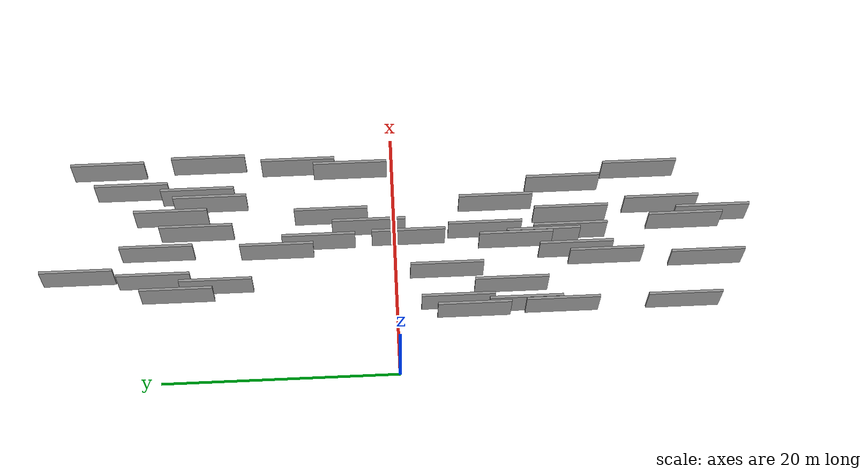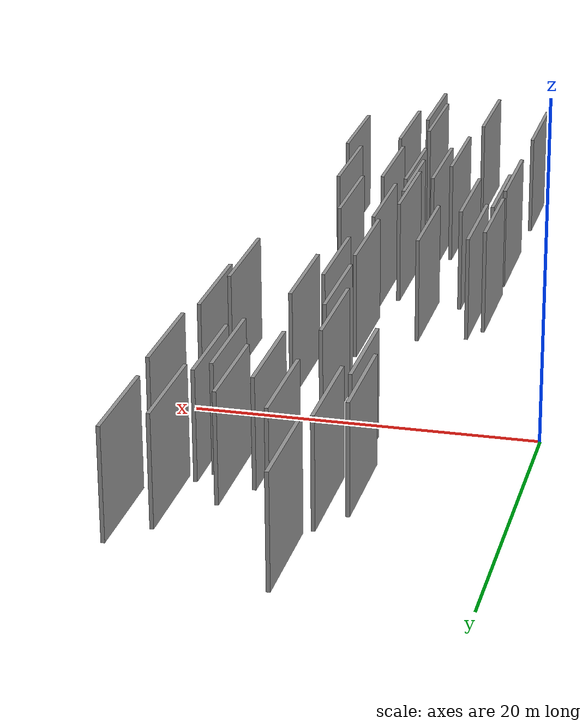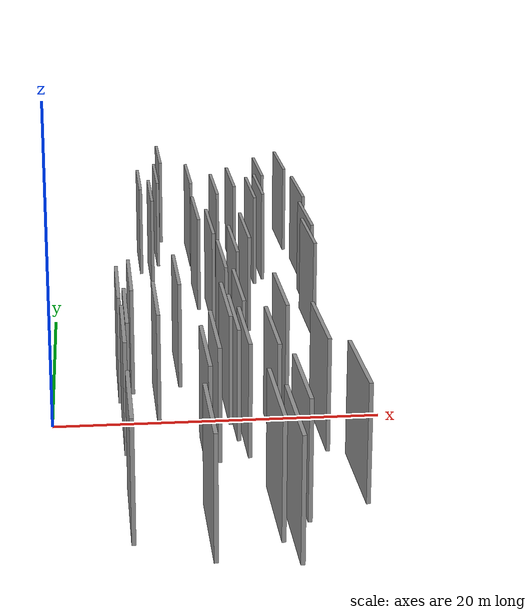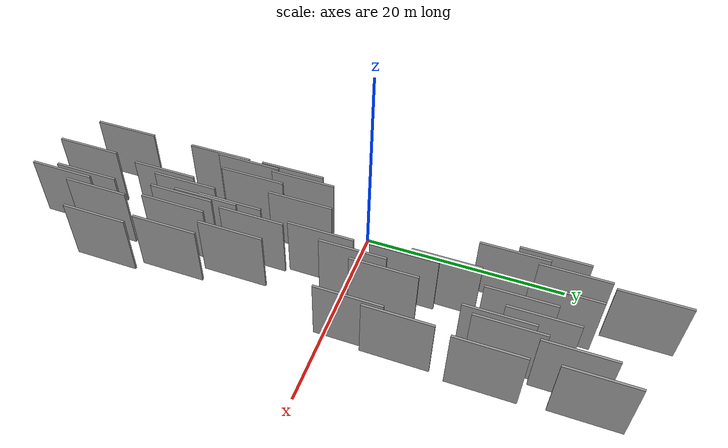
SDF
<sdf version="1.6">
 <world name="default">
  <scene>
   <sky><clouds><speed>12</speed></clouds></sky>
   <ambient>0.4 0.4 0.4 1</ambient>
   <background>0.7 0.7 0.7 1</background>
   <shadows>1</shadows>
  </scene>
  <gravity>0 0 -9.8066</gravity>
  <magnetic_field>6e-06 2.3e-05 -4.2e-05</magnetic_field>
  <physics default="0" name="default_physics" type="ode">
   <ode>
    <solver>
     <type>quick</type>
     <iters>10</iters>
     <sor>1.0</sor>
     <use_dynamic_moi_rescaling>0</use_dynamic_moi_rescaling>
    </solver>
    <constraints>
     <cfm>0</cfm>
     <erp>0.2</erp>
     <contact_max_correcting_vel>100</contact_max_correcting_vel>
     <contact_surface_layer>0.001</contact_surface_layer>
    </constraints>
   </ode>
   <max_step_size>0.004</max_step_size>
   <real_time_factor>1</real_time_factor>
   <real_time_update_rate>250</real_time_update_rate>
  </physics>
  <light name="sun" type="directional">
   <pose>0 0 10 0 0 0</pose>
   <diffuse>0.8 0.8 0.8 1</diffuse>
   <specular>0.2 0.2 0.2 1</specular>
   <attenuation>
    <range>1000</range>
    <constant>0.9</constant>
    <linear>0.01</linear>
    <quadratic>0.001</quadratic>
   </attenuation>
   <direction>-0.5 0.1 -0.9</direction>
  </light>
  <model name="grey_wall_1">
   <static>1</static>
   <pose>15.1076 -20.1467 5.0 0.000000 0.000000 1.570796</pose>
   <link name="link">
    <pose>0 0 3.00 0 0 0</pose>
    <collision name="collision"><geometry><box><size>6.00 0.2 6.00</size></box></geometry></collision>
    <visual name="visual">
     <cast_shadows>0</cast_shadows>
     <geometry><box><size>6.00 0.2 6.00</size></box></geometry>
     <material>
      <script>
       <uri>model://grey_wall/materials/scripts</uri>
       <uri>model://grey_wall/materials/textures</uri>
       <name>vrc/grey_wall</name>
      </script>
     </material>
    </visual>
   </link>
  </model>
  <model name="grey_wall_2">
   <static>1</static>
   <pose>12.1999 5.2077 5.0 0.000000 0.000000 1.570796</pose>
   <link name="link">
    <pose>0 0 3.00 0 0 0</pose>
    <collision name="collision"><geometry><box><size>6.00 0.2 6.00</size></box></geometry></collision>
    <visual name="visual">
     <cast_shadows>0</cast_shadows>
     <geometry><box><size>6.00 0.2 6.00</size></box></geometry>
     <material>
      <script>
       <uri>model://grey_wall/materials/scripts</uri>
       <uri>model://grey_wall/materials/textures</uri>
       <name>vrc/grey_wall</name>
      </script>
     </material>
    </visual>
   </link>
  </model>
  <model name="grey_wall_3">
   <static>1</static>
   <pose>10.1871 -14.3013 5.0 0.000000 0.000000 1.570796</pose>
   <link name="link">
    <pose>0 0 3.00 0 0 0</pose>
    <collision name="collision"><geometry><box><size>6.00 0.2 6.00</size></box></geometry></collision>
    <visual name="visual">
     <cast_shadows>0</cast_shadows>
     <geometry><box><size>6.00 0.2 6.00</size></box></geometry>
     <material>
      <script>
       <uri>model://grey_wall/materials/scripts</uri>
       <uri>model://grey_wall/materials/textures</uri>
       <name>vrc/grey_wall</name>
      </script>
     </material>
    </visual>
   </link>
  </model>
  <model name="grey_wall_4">
   <static>1</static>
   <pose>16.6291 23.3080 5.0 0.000000 0.000000 1.570796</pose>
   <link name="link">
    <pose>0 0 3.00 0 0 0</pose>
    <collision name="collision"><geometry><box><size>6.00 0.2 6.00</size></box></geometry></collision>
    <visual name="visual">
     <cast_shadows>0</cast_shadows>
     <geometry><box><size>6.00 0.2 6.00</size></box></geometry>
     <material>
      <script>
       <uri>model://grey_wall/materials/scripts</uri>
       <uri>model://grey_wall/materials/textures</uri>
       <name>vrc/grey_wall</name>
      </script>
     </material>
    </visual>
   </link>
  </model>
  <model name="grey_wall_5">
   <static>1</static>
   <pose>12.1281 -21.8119 5.0 0.000000 0.000000 1.570796</pose>
   <link name="link">
    <pose>0 0 3.00 0 0 0</pose>
    <collision name="collision"><geometry><box><size>6.00 0.2 6.00</size></box></geometry></collision>
    <visual name="visual">
     <cast_shadows>0</cast_shadows>
     <geometry><box><size>6.00 0.2 6.00</size></box></geometry>
     <material>
      <script>
       <uri>model://grey_wall/materials/scripts</uri>
       <uri>model://grey_wall/materials/textures</uri>
       <name>vrc/grey_wall</name>
      </script>
     </material>
    </visual>
   </link>
  </model>
  <model name="grey_wall_6">
   <static>1</static>
   <pose>10.2048 -1.0611 5.0 0.000000 0.000000 1.570796</pose>
   <link name="link">
    <pose>0 0 3.00 0 0 0</pose>
    <collision name="collision"><geometry><box><size>6.00 0.2 6.00</size></box></geometry></collision>
    <visual name="visual">
     <cast_shadows>0</cast_shadows>
     <geometry><box><size>6.00 0.2 6.00</size></box></geometry>
     <material>
      <script>
       <uri>model://grey_wall/materials/scripts</uri>
       <uri>model://grey_wall/materials/textures</uri>
       <name>vrc/grey_wall</name>
      </script>
     </material>
    </visual>
   </link>
  </model>
  <model name="grey_wall_7">
   <static>1</static>
   <pose>3.9544 -6.2248 5.0 0.000000 0.000000 1.570796</pose>
   <link name="link">
    <pose>0 0 3.00 0 0 0</pose>
    <collision name="collision"><geometry><box><size>6.00 0.2 6.00</size></box></geometry></collision>
    <visual name="visual">
     <cast_shadows>0</cast_shadows>
     <geometry><box><size>6.00 0.2 6.00</size></box></geometry>
     <material>
      <script>
       <uri>model://grey_wall/materials/scripts</uri>
       <uri>model://grey_wall/materials/textures</uri>
       <name>vrc/grey_wall</name>
      </script>
     </material>
    </visual>
   </link>
  </model>
  <model name="grey_wall_8">
   <static>1</static>
   <pose>14.2728 16.0527 5.0 0.000000 0.000000 1.570796</pose>
   <link name="link">
    <pose>0 0 3.00 0 0 0</pose>
    <collision name="collision"><geometry><box><size>6.00 0.2 6.00</size></box></geometry></collision>
    <visual name="visual">
     <cast_shadows>0</cast_shadows>
     <geometry><box><size>6.00 0.2 6.00</size></box></geometry>
     <material>
      <script>
       <uri>model://grey_wall/materials/scripts</uri>
       <uri>model://grey_wall/materials/textures</uri>
       <name>vrc/grey_wall</name>
      </script>
     </material>
    </visual>
   </link>
  </model>
  <model name="grey_wall_9">
   <static>1</static>
   <pose>4.6797 -4.9293 5.0 0.000000 0.000000 1.570796</pose>
   <link name="link">
    <pose>0 0 3.00 0 0 0</pose>
    <collision name="collision"><geometry><box><size>6.00 0.2 6.00</size></box></geometry></collision>
    <visual name="visual">
     <cast_shadows>0</cast_shadows>
     <geometry><box><size>6.00 0.2 6.00</size></box></geometry>
     <material>
      <script>
       <uri>model://grey_wall/materials/scripts</uri>
       <uri>model://grey_wall/materials/textures</uri>
       <name>vrc/grey_wall</name>
      </script>
     </material>
    </visual>
   </link>
  </model>
  <model name="grey_wall_10">
   <static>1</static>
   <pose>14.1729 -13.8477 5.0 0.000000 0.000000 1.570796</pose>
   <link name="link">
    <pose>0 0 3.00 0 0 0</pose>
    <collision name="collision"><geometry><box><size>6.00 0.2 6.00</size></box></geometry></collision>
    <visual name="visual">
     <cast_shadows>0</cast_shadows>
     <geometry><box><size>6.00 0.2 6.00</size></box></geometry>
     <material>
      <script>
       <uri>model://grey_wall/materials/scripts</uri>
       <uri>model://grey_wall/materials/textures</uri>
       <name>vrc/grey_wall</name>
      </script>
     </material>
    </visual>
   </link>
  </model>
  <model name="grey_wall_11">
   <static>1</static>
   <pose>11.2247 -25.9429 5.0 0.000000 0.000000 1.570796</pose>
   <link name="link">
    <pose>0 0 3.00 0 0 0</pose>
    <collision name="collision"><geometry><box><size>6.00 0.2 6.00</size></box></geometry></collision>
    <visual name="visual">
     <cast_shadows>0</cast_shadows>
     <geometry><box><size>6.00 0.2 6.00</size></box></geometry>
     <material>
      <script>
       <uri>model://grey_wall/materials/scripts</uri>
       <uri>model://grey_wall/materials/textures</uri>
       <name>vrc/grey_wall</name>
      </script>
     </material>
    </visual>
   </link>
  </model>
  <model name="grey_wall_12">
   <static>1</static>
   <pose>12.5428 18.3019 5.0 0.000000 0.000000 1.570796</pose>
   <link name="link">
    <pose>0 0 3.00 0 0 0</pose>
    <collision name="collision"><geometry><box><size>6.00 0.2 6.00</size></box></geometry></collision>
    <visual name="visual">
     <cast_shadows>0</cast_shadows>
     <geometry><box><size>6.00 0.2 6.00</size></box></geometry>
     <material>
      <script>
       <uri>model://grey_wall/materials/scripts</uri>
       <uri>model://grey_wall/materials/textures</uri>
       <name>vrc/grey_wall</name>
      </script>
     </material>
    </visual>
   </link>
  </model>
  <model name="grey_wall_13">
   <static>1</static>
   <pose>12.7987 -8.3008 5.0 0.000000 0.000000 1.570796</pose>
   <link name="link">
    <pose>0 0 3.00 0 0 0</pose>
    <collision name="collision"><geometry><box><size>6.00 0.2 6.00</size></box></geometry></collision>
    <visual name="visual">
     <cast_shadows>0</cast_shadows>
     <geometry><box><size>6.00 0.2 6.00</size></box></geometry>
     <material>
      <script>
       <uri>model://grey_wall/materials/scripts</uri>
       <uri>model://grey_wall/materials/textures</uri>
       <name>vrc/grey_wall</name>
      </script>
     </material>
    </visual>
   </link>
  </model>
  <model name="grey_wall_14">
   <static>1</static>
   <pose>9.8481 -12.0889 5.0 0.000000 0.000000 1.570796</pose>
   <link name="link">
    <pose>0 0 3.00 0 0 0</pose>
    <collision name="collision"><geometry><box><size>6.00 0.2 6.00</size></box></geometry></collision>
    <visual name="visual">
     <cast_shadows>0</cast_shadows>
     <geometry><box><size>6.00 0.2 6.00</size></box></geometry>
     <material>
      <script>
       <uri>model://grey_wall/materials/scripts</uri>
       <uri>model://grey_wall/materials/textures</uri>
       <name>vrc/grey_wall</name>
      </script>
     </material>
    </visual>
   </link>
  </model>
  <model name="grey_wall_15">
   <static>1</static>
   <pose>6.7236 14.8359 5.0 0.000000 0.000000 1.570796</pose>
   <link name="link">
    <pose>0 0 3.00 0 0 0</pose>
    <collision name="collision"><geometry><box><size>6.00 0.2 6.00</size></box></geometry></collision>
    <visual name="visual">
     <cast_shadows>0</cast_shadows>
     <geometry><box><size>6.00 0.2 6.00</size></box></geometry>
     <material>
      <script>
       <uri>model://grey_wall/materials/scripts</uri>
       <uri>model://grey_wall/materials/textures</uri>
       <name>vrc/grey_wall</name>
      </script>
     </material>
    </visual>
   </link>
  </model>
  <model name="grey_wall_16">
   <static>1</static>
   <pose>11.1813 2.1592 5.0 0.000000 0.000000 1.570796</pose>
   <link name="link">
    <pose>0 0 3.00 0 0 0</pose>
    <collision name="collision"><geometry><box><size>6.00 0.2 6.00</size></box></geometry></collision>
    <visual name="visual">
     <cast_shadows>0</cast_shadows>
     <geometry><box><size>6.00 0.2 6.00</size></box></geometry>
     <material>
      <script>
       <uri>model://grey_wall/materials/scripts</uri>
       <uri>model://grey_wall/materials/textures</uri>
       <name>vrc/grey_wall</name>
      </script>
     </material>
    </visual>
   </link>
  </model>
  <model name="grey_wall_17">
   <static>1</static>
   <pose>16.8694 15.0728 5.0 0.000000 0.000000 1.570796</pose>
   <link name="link">
    <pose>0 0 3.00 0 0 0</pose>
    <collision name="collision"><geometry><box><size>6.00 0.2 6.00</size></box></geometry></collision>
    <visual name="visual">
     <cast_shadows>0</cast_shadows>
     <geometry><box><size>6.00 0.2 6.00</size></box></geometry>
     <material>
      <script>
       <uri>model://grey_wall/materials/scripts</uri>
       <uri>model://grey_wall/materials/textures</uri>
       <name>vrc/grey_wall</name>
      </script>
     </material>
    </visual>
   </link>
  </model>
  <model name="grey_wall_18">
   <static>1</static>
   <pose>11.2054 16.2878 5.0 0.000000 0.000000 1.570796</pose>
   <link name="link">
    <pose>0 0 3.00 0 0 0</pose>
    <collision name="collision"><geometry><box><size>6.00 0.2 6.00</size></box></geometry></collision>
    <visual name="visual">
     <cast_shadows>0</cast_shadows>
     <geometry><box><size>6.00 0.2 6.00</size></box></geometry>
     <material>
      <script>
       <uri>model://grey_wall/materials/scripts</uri>
       <uri>model://grey_wall/materials/textures</uri>
       <name>vrc/grey_wall</name>
      </script>
     </material>
    </visual>
   </link>
  </model>
  <model name="grey_wall_19">
   <static>1</static>
   <pose>10.6849 -23.7205 5.0 0.000000 0.000000 1.570796</pose>
   <link name="link">
    <pose>0 0 3.00 0 0 0</pose>
    <collision name="collision"><geometry><box><size>6.00 0.2 6.00</size></box></geometry></collision>
    <visual name="visual">
     <cast_shadows>0</cast_shadows>
     <geometry><box><size>6.00 0.2 6.00</size></box></geometry>
     <material>
      <script>
       <uri>model://grey_wall/materials/scripts</uri>
       <uri>model://grey_wall/materials/textures</uri>
       <name>vrc/grey_wall</name>
      </script>
     </material>
    </visual>
   </link>
  </model>
  <model name="grey_wall_20">
   <static>1</static>
   <pose>9.6404 19.5847 5.0 0.000000 0.000000 1.570796</pose>
   <link name="link">
    <pose>0 0 3.00 0 0 0</pose>
    <collision name="collision"><geometry><box><size>6.00 0.2 6.00</size></box></geometry></collision>
    <visual name="visual">
     <cast_shadows>0</cast_shadows>
     <geometry><box><size>6.00 0.2 6.00</size></box></geometry>
     <material>
      <script>
       <uri>model://grey_wall/materials/scripts</uri>
       <uri>model://grey_wall/materials/textures</uri>
       <name>vrc/grey_wall</name>
      </script>
     </material>
    </visual>
   </link>
  </model>
  <model name="grey_wall_21">
   <static>1</static>
   <pose>8.6431 -14.7393 5.0 0.000000 0.000000 1.570796</pose>
   <link name="link">
    <pose>0 0 3.00 0 0 0</pose>
    <collision name="collision"><geometry><box><size>6.00 0.2 6.00</size></box></geometry></collision>
    <visual name="visual">
     <cast_shadows>0</cast_shadows>
     <geometry><box><size>6.00 0.2 6.00</size></box></geometry>
     <material>
      <script>
       <uri>model://grey_wall/materials/scripts</uri>
       <uri>model://grey_wall/materials/textures</uri>
       <name>vrc/grey_wall</name>
      </script>
     </material>
    </visual>
   </link>
  </model>
  <model name="grey_wall_22">
   <static>1</static>
   <pose>10.5808 -7.3412 5.0 0.000000 0.000000 1.570796</pose>
   <link name="link">
    <pose>0 0 3.00 0 0 0</pose>
    <collision name="collision"><geometry><box><size>6.00 0.2 6.00</size></box></geometry></collision>
    <visual name="visual">
     <cast_shadows>0</cast_shadows>
     <geometry><box><size>6.00 0.2 6.00</size></box></geometry>
     <material>
      <script>
       <uri>model://grey_wall/materials/scripts</uri>
       <uri>model://grey_wall/materials/textures</uri>
       <name>vrc/grey_wall</name>
      </script>
     </material>
    </visual>
   </link>
  </model>
  <model name="grey_wall_23">
   <static>1</static>
   <pose>13.6193 15.0661 5.0 0.000000 0.000000 1.570796</pose>
   <link name="link">
    <pose>0 0 3.00 0 0 0</pose>
    <collision name="collision"><geometry><box><size>6.00 0.2 6.00</size></box></geometry></collision>
    <visual name="visual">
     <cast_shadows>0</cast_shadows>
     <geometry><box><size>6.00 0.2 6.00</size></box></geometry>
     <material>
      <script>
       <uri>model://grey_wall/materials/scripts</uri>
       <uri>model://grey_wall/materials/textures</uri>
       <name>vrc/grey_wall</name>
      </script>
     </material>
    </visual>
   </link>
  </model>
  <model name="grey_wall_24">
   <static>1</static>
   <pose>7.8483 26.1774 5.0 0.000000 0.000000 1.570796</pose>
   <link name="link">
    <pose>0 0 3.00 0 0 0</pose>
    <collision name="collision"><geometry><box><size>6.00 0.2 6.00</size></box></geometry></collision>
    <visual name="visual">
     <cast_shadows>0</cast_shadows>
     <geometry><box><size>6.00 0.2 6.00</size></box></geometry>
     <material>
      <script>
       <uri>model://grey_wall/materials/scripts</uri>
       <uri>model://grey_wall/materials/textures</uri>
       <name>vrc/grey_wall</name>
      </script>
     </material>
    </visual>
   </link>
  </model>
  <model name="grey_wall_25">
   <static>1</static>
   <pose>7.9813 -17.1811 5.0 0.000000 0.000000 1.570796</pose>
   <link name="link">
    <pose>0 0 3.00 0 0 0</pose>
    <collision name="collision"><geometry><box><size>6.00 0.2 6.00</size></box></geometry></collision>
    <visual name="visual">
     <cast_shadows>0</cast_shadows>
     <geometry><box><size>6.00 0.2 6.00</size></box></geometry>
     <material>
      <script>
       <uri>model://grey_wall/materials/scripts</uri>
       <uri>model://grey_wall/materials/textures</uri>
       <name>vrc/grey_wall</name>
      </script>
     </material>
    </visual>
   </link>
  </model>
  <model name="grey_wall_26">
   <static>1</static>
   <pose>4.2748 -10.4588 5.0 0.000000 0.000000 1.570796</pose>
   <link name="link">
    <pose>0 0 3.00 0 0 0</pose>
    <collision name="collision"><geometry><box><size>6.00 0.2 6.00</size></box></geometry></collision>
    <visual name="visual">
     <cast_shadows>0</cast_shadows>
     <geometry><box><size>6.00 0.2 6.00</size></box></geometry>
     <material>
      <script>
       <uri>model://grey_wall/materials/scripts</uri>
       <uri>model://grey_wall/materials/textures</uri>
       <name>vrc/grey_wall</name>
      </script>
     </material>
    </visual>
   </link>
  </model>
  <model name="grey_wall_27">
   <static>1</static>
   <pose>16.4168 7.7540 5.0 0.000000 0.000000 1.570796</pose>
   <link name="link">
    <pose>0 0 3.00 0 0 0</pose>
    <collision name="collision"><geometry><box><size>6.00 0.2 6.00</size></box></geometry></collision>
    <visual name="visual">
     <cast_shadows>0</cast_shadows>
     <geometry><box><size>6.00 0.2 6.00</size></box></geometry>
     <material>
      <script>
       <uri>model://grey_wall/materials/scripts</uri>
       <uri>model://grey_wall/materials/textures</uri>
       <name>vrc/grey_wall</name>
      </script>
     </material>
    </visual>
   </link>
  </model>
  <model name="grey_wall_28">
   <static>1</static>
   <pose>5.9140 -9.3452 5.0 0.000000 0.000000 1.570796</pose>
   <link name="link">
    <pose>0 0 3.00 0 0 0</pose>
    <collision name="collision"><geometry><box><size>6.00 0.2 6.00</size></box></geometry></collision>
    <visual name="visual">
     <cast_shadows>0</cast_shadows>
     <geometry><box><size>6.00 0.2 6.00</size></box></geometry>
     <material>
      <script>
       <uri>model://grey_wall/materials/scripts</uri>
       <uri>model://grey_wall/materials/textures</uri>
       <name>vrc/grey_wall</name>
      </script>
     </material>
    </visual>
   </link>
  </model>
  <model name="grey_wall_29">
   <static>1</static>
   <pose>6.0825 18.0786 5.0 0.000000 0.000000 1.570796</pose>
   <link name="link">
    <pose>0 0 3.00 0 0 0</pose>
    <collision name="collision"><geometry><box><size>6.00 0.2 6.00</size></box></geometry></collision>
    <visual name="visual">
     <cast_shadows>0</cast_shadows>
     <geometry><box><size>6.00 0.2 6.00</size></box></geometry>
     <material>
      <script>
       <uri>model://grey_wall/materials/scripts</uri>
       <uri>model://grey_wall/materials/textures</uri>
       <name>vrc/grey_wall</name>
      </script>
     </material>
    </visual>
   </link>
  </model>
  <model name="grey_wall_30">
   <static>1</static>
   <pose>4.0646 -23.3976 5.0 0.000000 0.000000 1.570796</pose>
   <link name="link">
    <pose>0 0 3.00 0 0 0</pose>
    <collision name="collision"><geometry><box><size>6.00 0.2 6.00</size></box></geometry></collision>
    <visual name="visual">
     <cast_shadows>0</cast_shadows>
     <geometry><box><size>6.00 0.2 6.00</size></box></geometry>
     <material>
      <script>
       <uri>model://grey_wall/materials/scripts</uri>
       <uri>model://grey_wall/materials/textures</uri>
       <name>vrc/grey_wall</name>
      </script>
     </material>
    </visual>
   </link>
  </model>
  <model name="grey_wall_31">
   <static>1</static>
   <pose>7.3360 19.9078 5.0 0.000000 0.000000 1.570796</pose>
   <link name="link">
    <pose>0 0 3.00 0 0 0</pose>
    <collision name="collision"><geometry><box><size>6.00 0.2 6.00</size></box></geometry></collision>
    <visual name="visual">
     <cast_shadows>0</cast_shadows>
     <geometry><box><size>6.00 0.2 6.00</size></box></geometry>
     <material>
      <script>
       <uri>model://grey_wall/materials/scripts</uri>
       <uri>model://grey_wall/materials/textures</uri>
       <name>vrc/grey_wall</name>
      </script>
     </material>
    </visual>
   </link>
  </model>
  <model name="grey_wall_32">
   <static>1</static>
   <pose>9.6402 -9.8427 5.0 0.000000 0.000000 1.570796</pose>
   <link name="link">
    <pose>0 0 3.00 0 0 0</pose>
    <collision name="collision"><geometry><box><size>6.00 0.2 6.00</size></box></geometry></collision>
    <visual name="visual">
     <cast_shadows>0</cast_shadows>
     <geometry><box><size>6.00 0.2 6.00</size></box></geometry>
     <material>
      <script>
       <uri>model://grey_wall/materials/scripts</uri>
       <uri>model://grey_wall/materials/textures</uri>
       <name>vrc/grey_wall</name>
      </script>
     </material>
    </visual>
   </link>
  </model>
  <model name="grey_wall_33">
   <static>1</static>
   <pose>9.4406 9.7538 5.0 0.000000 0.000000 1.570796</pose>
   <link name="link">
    <pose>0 0 3.00 0 0 0</pose>
    <collision name="collision"><geometry><box><size>6.00 0.2 6.00</size></box></geometry></collision>
    <visual name="visual">
     <cast_shadows>0</cast_shadows>
     <geometry><box><size>6.00 0.2 6.00</size></box></geometry>
     <material>
      <script>
       <uri>model://grey_wall/materials/scripts</uri>
       <uri>model://grey_wall/materials/textures</uri>
       <name>vrc/grey_wall</name>
      </script>
     </material>
    </visual>
   </link>
  </model>
  <model name="grey_wall_34">
   <static>1</static>
   <pose>4.0615 -13.4484 5.0 0.000000 0.000000 1.570796</pose>
   <link name="link">
    <pose>0 0 3.00 0 0 0</pose>
    <collision name="collision"><geometry><box><size>6.00 0.2 6.00</size></box></geometry></collision>
    <visual name="visual">
     <cast_shadows>0</cast_shadows>
     <geometry><box><size>6.00 0.2 6.00</size></box></geometry>
     <material>
      <script>
       <uri>model://grey_wall/materials/scripts</uri>
       <uri>model://grey_wall/materials/textures</uri>
       <name>vrc/grey_wall</name>
      </script>
     </material>
    </visual>
   </link>
  </model>
  <model name="grey_wall_35">
   <static>1</static>
   <pose>7.5322 -25.4200 5.0 0.000000 0.000000 1.570796</pose>
   <link name="link">
    <pose>0 0 3.00 0 0 0</pose>
    <collision name="collision"><geometry><box><size>6.00 0.2 6.00</size></box></geometry></collision>
    <visual name="visual">
     <cast_shadows>0</cast_shadows>
     <geometry><box><size>6.00 0.2 6.00</size></box></geometry>
     <material>
      <script>
       <uri>model://grey_wall/materials/scripts</uri>
       <uri>model://grey_wall/materials/textures</uri>
       <name>vrc/grey_wall</name>
      </script>
     </material>
    </visual>
   </link>
  </model>
  <model name="grey_wall_36">
   <static>1</static>
   <pose>7.3449 -4.1091 5.0 0.000000 0.000000 1.570796</pose>
   <link name="link">
    <pose>0 0 3.00 0 0 0</pose>
    <collision name="collision"><geometry><box><size>6.00 0.2 6.00</size></box></geometry></collision>
    <visual name="visual">
     <cast_shadows>0</cast_shadows>
     <geometry><box><size>6.00 0.2 6.00</size></box></geometry>
     <material>
      <script>
       <uri>model://grey_wall/materials/scripts</uri>
       <uri>model://grey_wall/materials/textures</uri>
       <name>vrc/grey_wall</name>
      </script>
     </material>
    </visual>
   </link>
  </model>
  <model name="grey_wall_37">
   <static>1</static>
   <pose>11.6180 -14.3912 5.0 0.000000 0.000000 1.570796</pose>
   <link name="link">
    <pose>0 0 3.00 0 0 0</pose>
    <collision name="collision"><geometry><box><size>6.00 0.2 6.00</size></box></geometry></collision>
    <visual name="visual">
     <cast_shadows>0</cast_shadows>
     <geometry><box><size>6.00 0.2 6.00</size></box></geometry>
     <material>
      <script>
       <uri>model://grey_wall/materials/scripts</uri>
       <uri>model://grey_wall/materials/textures</uri>
       <name>vrc/grey_wall</name>
      </script>
     </material>
    </visual>
   </link>
  </model>
  <model name="grey_wall_38">
   <static>1</static>
   <pose>14.8260 21.4367 5.0 0.000000 0.000000 1.570796</pose>
   <link name="link">
    <pose>0 0 3.00 0 0 0</pose>
    <collision name="collision"><geometry><box><size>6.00 0.2 6.00</size></box></geometry></collision>
    <visual name="visual">
     <cast_shadows>0</cast_shadows>
     <geometry><box><size>6.00 0.2 6.00</size></box></geometry>
     <material>
      <script>
       <uri>model://grey_wall/materials/scripts</uri>
       <uri>model://grey_wall/materials/textures</uri>
       <name>vrc/grey_wall</name>
      </script>
     </material>
    </visual>
   </link>
  </model>
  <model name="grey_wall_39">
   <static>1</static>
   <pose>15.9956 3.5075 5.0 0.000000 0.000000 1.570796</pose>
   <link name="link">
    <pose>0 0 3.00 0 0 0</pose>
    <collision name="collision"><geometry><box><size>6.00 0.2 6.00</size></box></geometry></collision>
    <visual name="visual">
     <cast_shadows>0</cast_shadows>
     <geometry><box><size>6.00 0.2 6.00</size></box></geometry>
     <material>
      <script>
       <uri>model://grey_wall/materials/scripts</uri>
       <uri>model://grey_wall/materials/textures</uri>
       <name>vrc/grey_wall</name>
      </script>
     </material>
    </visual>
   </link>
  </model>
  <model name="grey_wall_40">
   <static>1</static>
   <pose>10.1011 6.3048 5.0 0.000000 0.000000 1.570796</pose>
   <link name="link">
    <pose>0 0 3.00 0 0 0</pose>
    <collision name="collision"><geometry><box><size>6.00 0.2 6.00</size></box></geometry></collision>
    <visual name="visual">
     <cast_shadows>0</cast_shadows>
     <geometry><box><size>6.00 0.2 6.00</size></box></geometry>
     <material>
      <script>
       <uri>model://grey_wall/materials/scripts</uri>
       <uri>model://grey_wall/materials/textures</uri>
       <name>vrc/grey_wall</name>
      </script>
     </material>
    </visual>
   </link>
  </model>
 </world>
</sdf>
